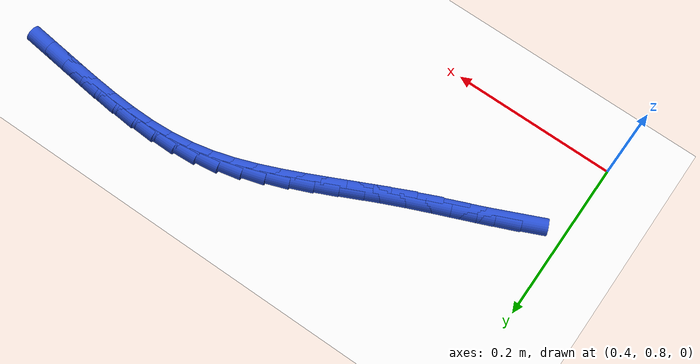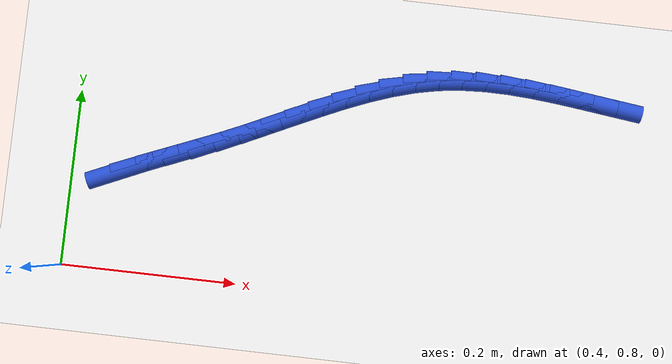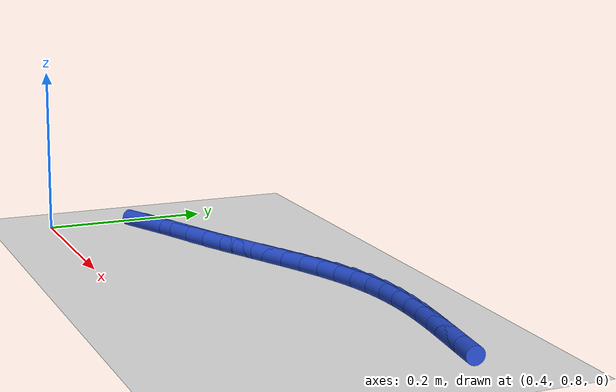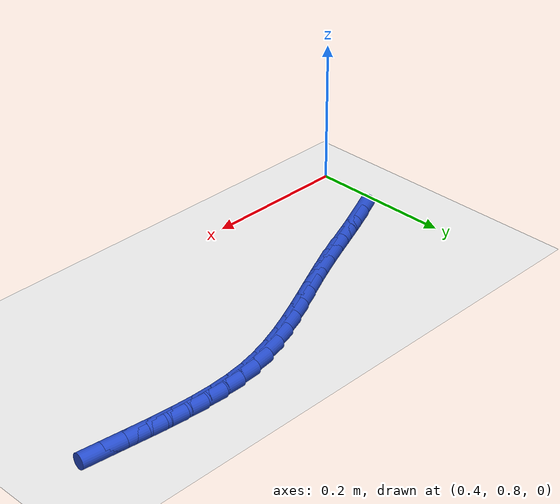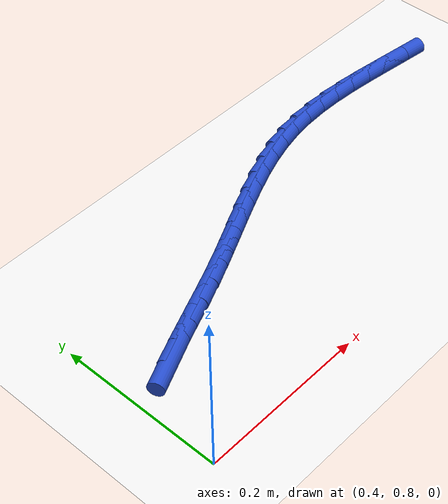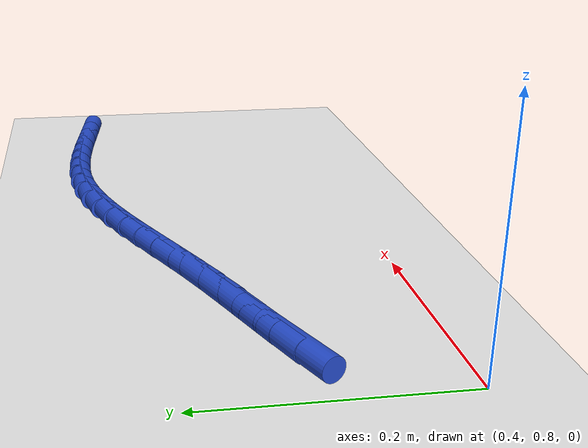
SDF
<sdf version="1.6">
 <world name="default">
  <model name="ground_plane">
   <static>1</static>
   <link name="link">
    <collision name="collision">
     <geometry><plane><normal>0 0 1</normal><size>100 100</size></plane></geometry>
     <surface><friction><ode><mu>100</mu><mu2>50</mu2></ode></friction></surface>
    </collision>
    <visual name="visual">
     <cast_shadows>0</cast_shadows>
     <geometry><plane><normal>0 0 1</normal><size>100 100</size></plane></geometry>
     <material>
      <script><uri>file://media/materials/scripts/gazebo.material</uri><name>Gazebo/WhiteGlow</name></script>
     </material>
    </visual>
   </link>
  </model>
  <model name="line">
   <link name="link_38">
    <pose>0.45710958356180154 0.9137839002533681 0.01 0 1.57 0.41911730472576453</pose>
    <collision name="collision">
     <geometry><cylinder><radius>0.01</radius><length>0.08</length></cylinder></geometry>
    </collision>
    <visual name="visual">
     <material>
      <script><name>Gazebo/Blue</name><uri>file://media/materials/scripts/gazebo.material</uri></script>
     </material>
     <geometry><cylinder><radius>0.01</radius><length>0.08</length></cylinder></geometry>
    </visual>
   </link>
   <link name="link_39">
    <pose>0.4840233319322596 0.9257743582589505 0.01 0 1.57 0.39639488406100976</pose>
    <collision name="collision">
     <geometry><cylinder><radius>0.01</radius><length>0.08</length></cylinder></geometry>
    </collision>
    <visual name="visual">
     <material>
      <script><name>Gazebo/Blue</name><uri>file://media/materials/scripts/gazebo.material</uri></script>
     </material>
     <geometry><cylinder><radius>0.01</radius><length>0.08</length></cylinder></geometry>
    </visual>
   </link>
   <link name="link_40">
    <pose>0.5116132239820641 0.9373221109574503 0.01 0 1.57 0.38932847842116053</pose>
    <collision name="collision">
     <geometry><cylinder><radius>0.01</radius><length>0.08</length></cylinder></geometry>
    </collision>
    <visual name="visual">
     <material>
      <script><name>Gazebo/Blue</name><uri>file://media/materials/scripts/gazebo.material</uri></script>
     </material>
     <geometry><cylinder><radius>0.01</radius><length>0.08</length></cylinder></geometry>
    </visual>
   </link>
   <link name="link_41">
    <pose>0.5394748630645099 0.9487529096822932 0.01 0 1.57 0.39742627563807803</pose>
    <collision name="collision">
     <geometry><cylinder><radius>0.01</radius><length>0.08</length></cylinder></geometry>
    </collision>
    <visual name="visual">
     <material>
      <script><name>Gazebo/Blue</name><uri>file://media/materials/scripts/gazebo.material</uri></script>
     </material>
     <geometry><cylinder><radius>0.01</radius><length>0.08</length></cylinder></geometry>
    </visual>
   </link>
   <link name="link_42">
    <pose>0.5672038525328915 0.9603925057669058 0.01 0 1.57 0.418891159312501</pose>
    <collision name="collision">
     <geometry><cylinder><radius>0.01</radius><length>0.08</length></cylinder></geometry>
    </collision>
    <visual name="visual">
     <material>
      <script><name>Gazebo/Blue</name><uri>file://media/materials/scripts/gazebo.material</uri></script>
     </material>
     <geometry><cylinder><radius>0.01</radius><length>0.08</length></cylinder></geometry>
    </visual>
   </link>
   <link name="link_43">
    <pose>0.594435343726891 0.9725171428770415 0.01 0 1.57 0.4372875792906507</pose>
    <collision name="collision">
     <geometry><cylinder><radius>0.01</radius><length>0.08</length></cylinder></geometry>
    </collision>
    <visual name="visual">
     <material>
      <script><name>Gazebo/Blue</name><uri>file://media/materials/scripts/gazebo.material</uri></script>
     </material>
     <geometry><cylinder><radius>0.01</radius><length>0.08</length></cylinder></geometry>
    </visual>
   </link>
   <link name="link_44">
    <pose>0.6211296810498341 0.9849959756811436 0.01 0 1.57 0.4440868908183512</pose>
    <collision name="collision">
     <geometry><cylinder><radius>0.01</radius><length>0.08</length></cylinder></geometry>
    </collision>
    <visual name="visual">
     <material>
      <script><name>Gazebo/Blue</name><uri>file://media/materials/scripts/gazebo.material</uri></script>
     </material>
     <geometry><cylinder><radius>0.01</radius><length>0.08</length></cylinder></geometry>
    </visual>
   </link>
   <link name="link_45">
    <pose>0.647406914625069 0.9974982331767294 0.01 0 1.57 0.43880346209502574</pose>
    <collision name="collision">
     <geometry><cylinder><radius>0.01</radius><length>0.08</length></cylinder></geometry>
    </collision>
    <visual name="visual">
     <material>
      <script><name>Gazebo/Blue</name><uri>file://media/materials/scripts/gazebo.material</uri></script>
     </material>
     <geometry><cylinder><radius>0.01</radius><length>0.08</length></cylinder></geometry>
    </visual>
   </link>
   <link name="link_46">
    <pose>0.6733882002623637 1.009691760221167 0.01 0 1.57 0.4209097171881241</pose>
    <collision name="collision">
     <geometry><cylinder><radius>0.01</radius><length>0.08</length></cylinder></geometry>
    </collision>
    <visual name="visual">
     <material>
      <script><name>Gazebo/Blue</name><uri>file://media/materials/scripts/gazebo.material</uri></script>
     </material>
     <geometry><cylinder><radius>0.01</radius><length>0.08</length></cylinder></geometry>
    </visual>
   </link>
   <link name="link_47">
    <pose>0.6991946937714862 1.0212444016718247 0.01 0 1.57 0.38979277507109583</pose>
    <collision name="collision">
     <geometry><cylinder><radius>0.01</radius><length>0.08</length></cylinder></geometry>
    </collision>
    <visual name="visual">
     <material>
      <script><name>Gazebo/Blue</name><uri>file://media/materials/scripts/gazebo.material</uri></script>
     </material>
     <geometry><cylinder><radius>0.01</radius><length>0.08</length></cylinder></geometry>
    </visual>
   </link>
   <link name="link_48">
    <pose>0.7249475509622042 1.0318240023860696 0.01 0 1.57 0.3448377696085715</pose>
    <collision name="collision">
     <geometry><cylinder><radius>0.01</radius><length>0.08</length></cylinder></geometry>
    </collision>
    <visual name="visual">
     <material>
      <script><name>Gazebo/Blue</name><uri>file://media/materials/scripts/gazebo.material</uri></script>
     </material>
     <geometry><cylinder><radius>0.01</radius><length>0.08</length></cylinder></geometry>
    </visual>
   </link>
   <link name="link_49">
    <pose>0.7507679276442857 1.0410984072212695 0.01 0 1.57 0.285603122919033</pose>
    <collision name="collision">
     <geometry><cylinder><radius>0.01</radius><length>0.08</length></cylinder></geometry>
    </collision>
    <visual name="visual">
     <material>
      <script><name>Gazebo/Blue</name><uri>file://media/materials/scripts/gazebo.material</uri></script>
     </material>
     <geometry><cylinder><radius>0.01</radius><length>0.08</length></cylinder></geometry>
    </visual>
   </link>
   <link name="link_50">
    <pose>0.7767769796274986 1.0487354610347925 0.01 0 1.57 0.2121025445644821</pose>
    <collision name="collision">
     <geometry><cylinder><radius>0.01</radius><length>0.08</length></cylinder></geometry>
    </collision>
    <visual name="visual">
     <material>
      <script><name>Gazebo/Blue</name><uri>file://media/materials/scripts/gazebo.material</uri></script>
     </material>
     <geometry><cylinder><radius>0.01</radius><length>0.08</length></cylinder></geometry>
    </visual>
   </link>
   <link name="link_51">
    <pose>0.8030958627216108 1.0544030086840066 0.01 0 1.57 0.12846499892986996</pose>
    <collision name="collision">
     <geometry><cylinder><radius>0.01</radius><length>0.08</length></cylinder></geometry>
    </collision>
    <visual name="visual">
     <material>
      <script><name>Gazebo/Blue</name><uri>file://media/materials/scripts/gazebo.material</uri></script>
     </material>
     <geometry><cylinder><radius>0.01</radius><length>0.08</length></cylinder></geometry>
    </visual>
   </link>
   <link name="link_52">
    <pose>0.8298244922479258 1.0578557166184495 0.01 0 1.57 0.05291289589701586</pose>
    <collision name="collision">
     <geometry><cylinder><radius>0.01</radius><length>0.08</length></cylinder></geometry>
    </collision>
    <visual name="visual">
     <material>
      <script><name>Gazebo/Blue</name><uri>file://media/materials/scripts/gazebo.material</uri></script>
     </material>
     <geometry><cylinder><radius>0.01</radius><length>0.08</length></cylinder></geometry>
    </visual>
   </link>
   <link name="link_53">
    <pose>0.8569540847565095 1.0592925631217 0.01 0 1.57 -0.008668730914118777</pose>
    <collision name="collision">
     <geometry><cylinder><radius>0.01</radius><length>0.08</length></cylinder></geometry>
    </collision>
    <visual name="visual">
     <material>
      <script><name>Gazebo/Blue</name><uri>file://media/materials/scripts/gazebo.material</uri></script>
     </material>
     <geometry><cylinder><radius>0.01</radius><length>0.08</length></cylinder></geometry>
    </visual>
   </link>
   <link name="link_54">
    <pose>0.8844411777334026 1.05905427894027 0.01 0 1.57 -0.056506672630093666</pose>
    <collision name="collision">
     <geometry><cylinder><radius>0.01</radius><length>0.08</length></cylinder></geometry>
    </collision>
    <visual name="visual">
     <material>
      <script><name>Gazebo/Blue</name><uri>file://media/materials/scripts/gazebo.material</uri></script>
     </material>
     <geometry><cylinder><radius>0.01</radius><length>0.08</length></cylinder></geometry>
    </visual>
   </link>
   <link name="link_55">
    <pose>0.9122422936407425 1.0574816562316447 0.01 0 1.57 -0.09116156158491154</pose>
    <collision name="collision">
     <geometry><cylinder><radius>0.01</radius><length>0.08</length></cylinder></geometry>
    </collision>
    <visual name="visual">
     <material>
      <script><name>Gazebo/Blue</name><uri>file://media/materials/scripts/gazebo.material</uri></script>
     </material>
     <geometry><cylinder><radius>0.01</radius><length>0.08</length></cylinder></geometry>
    </visual>
   </link>
   <link name="link_56">
    <pose>0.9403139549406672 1.0549154871533113 0.01 0 1.57 -0.11326117406294703</pose>
    <collision name="collision">
     <geometry><cylinder><radius>0.01</radius><length>0.08</length></cylinder></geometry>
    </collision>
    <visual name="visual">
     <material>
      <script><name>Gazebo/Blue</name><uri>file://media/materials/scripts/gazebo.material</uri></script>
     </material>
     <geometry><cylinder><radius>0.01</radius><length>0.08</length></cylinder></geometry>
    </visual>
   </link>
   <link name="link_57">
    <pose>0.9686126840953139 1.051696563862756 0.01 0 1.57 -0.12333836808788057</pose>
    <collision name="collision">
     <geometry><cylinder><radius>0.01</radius><length>0.08</length></cylinder></geometry>
    </collision>
    <visual name="visual">
     <material>
      <script><name>Gazebo/Blue</name><uri>file://media/materials/scripts/gazebo.material</uri></script>
     </material>
     <geometry><cylinder><radius>0.01</radius><length>0.08</length></cylinder></geometry>
    </visual>
   </link>
   <link name="link_58">
    <pose>0.9970950035668208 1.048165678517466 0.01 0 1.57 -0.12174838325418057</pose>
    <collision name="collision">
     <geometry><cylinder><radius>0.01</radius><length>0.08</length></cylinder></geometry>
    </collision>
    <visual name="visual">
     <material>
      <script><name>Gazebo/Blue</name><uri>file://media/materials/scripts/gazebo.material</uri></script>
     </material>
     <geometry><cylinder><radius>0.01</radius><length>0.08</length></cylinder></geometry>
    </visual>
   </link>
  </model>
 </world>
</sdf>
